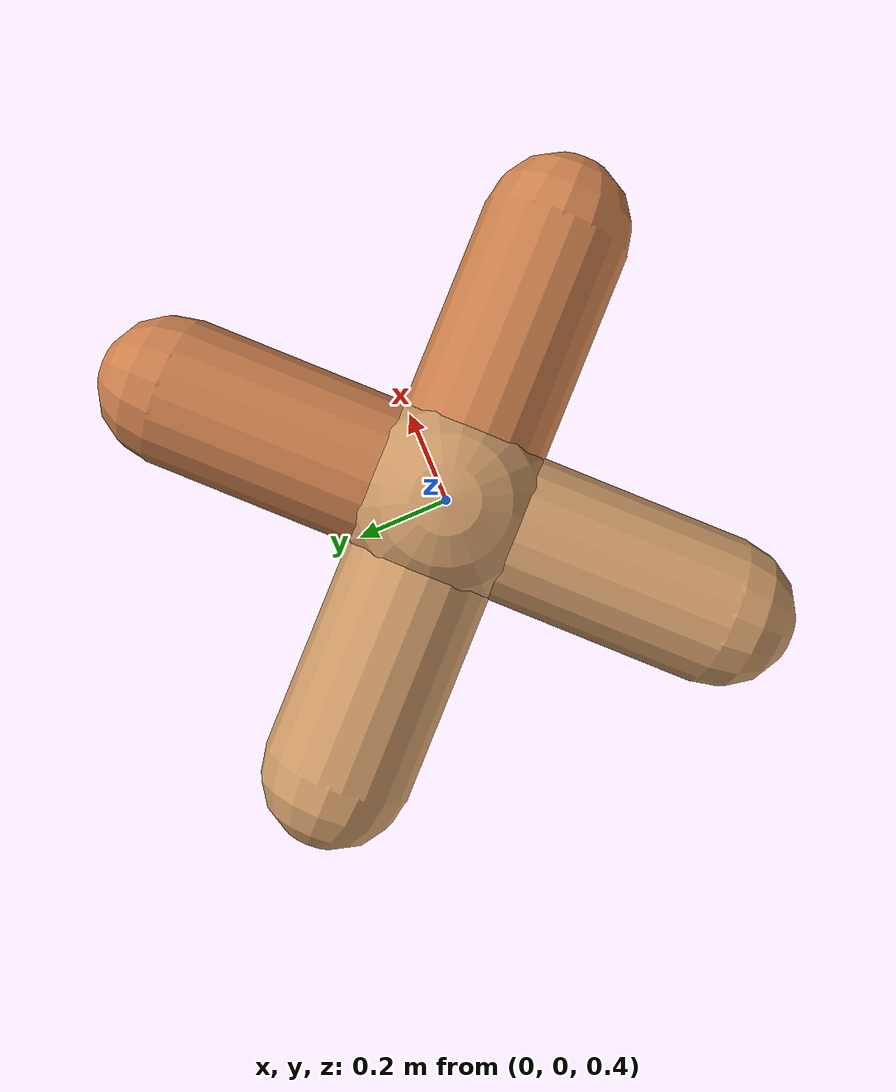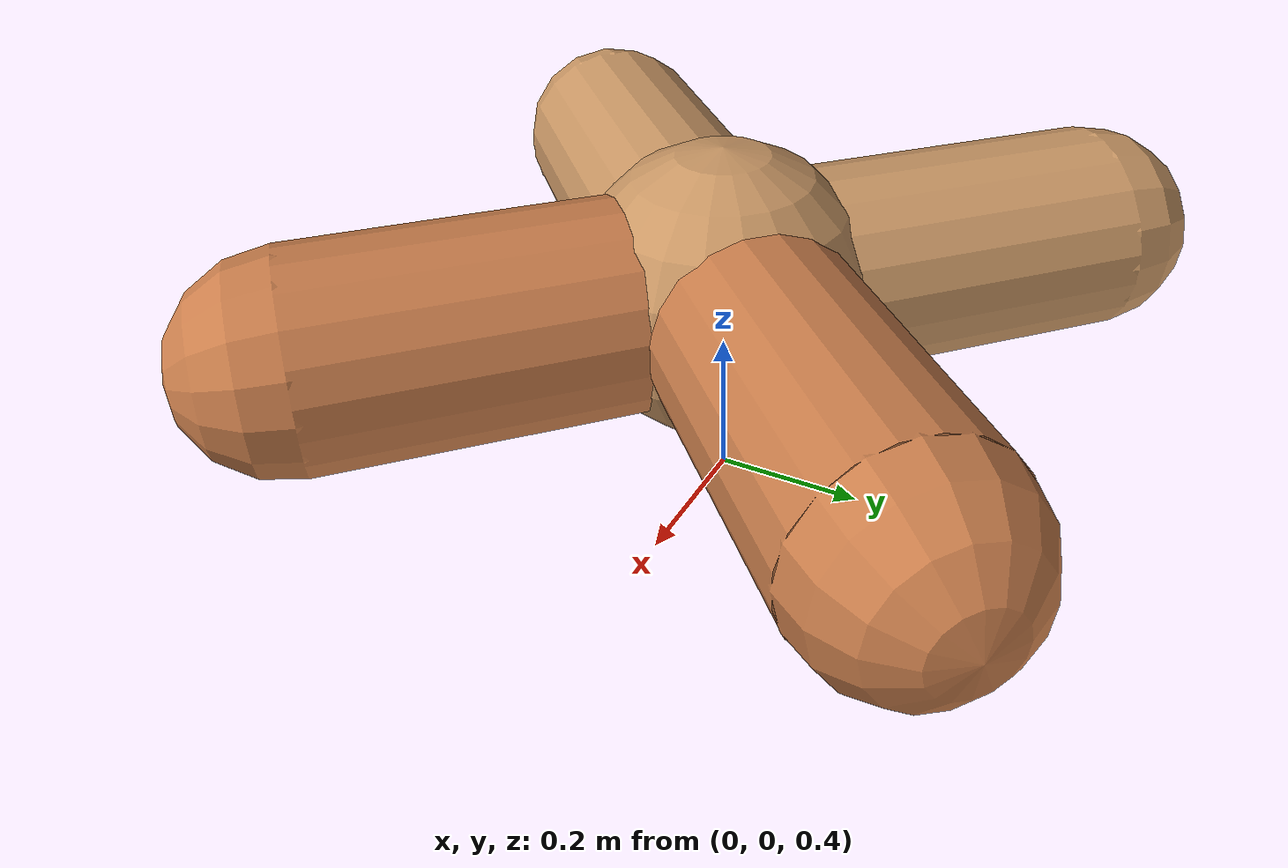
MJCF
<mujoco model="ant">
  <compiler angle="degree" coordinate="local" inertiafromgeom="true"/>
  <option integrator="RK4" timestep="0.01"/>
  <custom>
    <numeric data="0.0 0.0 0.55 1.0 0.0 0.0 0.0 0.0 1.0 0.0 -1.0 0.0 -1.0 0.0 1.0" name="init_qpos"/>
  </custom>
  <default>
    <joint armature="1" damping="1" limited="true"/>
    <geom conaffinity="0" condim="3" density="5.0" friction="1.5 0.1 0.1" margin="0.01" rgba="0.8 0.6 0.4 1"/>
  </default>
  <worldbody>
    <body name="torso" pos="0 0 0.6847706400064981">
      <geom name="torso_geom" pos="0 0 0" size="0.19788106876988892" type="sphere"/>
      <!--joint armature="0" damping="0" limited="false" margin="0.01" name="root" pos="0 0 0" type="free"/-->
      <body name="front_left_leg" pos="0 0 0">
        <geom fromto="0.0 0.0 0.0 0.015693044984335158 0.015693044984335158 0.0" name="aux_1_geom" size="0.08" type="capsule" rgba=".8 .5 .3 1"/>
        <body name="aux_1" pos="0.015693044984335158 0.015693044984335158 0">
          <joint axis="0 0 1" name="hip_1" pos="0.0 0.0 0.0" range="-40 40" type="hinge"/>
          <geom fromto="0.0 0.0 0.0 0.015693044984335158 0.015693044984335158 0.0" name="left_leg_geom" size="0.032034418599205236" type="capsule" rgba=".8 .5 .3 1"/>
          <body pos="0.015693044984335158 0.015693044984335158 0" name="front_left_foot">
            <joint axis="-1 1 0" name="ankle_1" pos="0.0 0.0 0.0" range="30 100" type="hinge"/>
            <geom fromto="0.0 0.0 0.0 0.35220259959595135 0.35220259959595135 0.0" name="left_ankle_geom" size="0.14203582983435126" type="capsule" rgba=".8 .5 .3 1"/>
          </body>
        </body>
      </body>
      <body name="front_right_leg" pos="0 0 0">
        <geom fromto="0.0 0.0 0.0 -0.015693044984335158 0.015693044984335158 0.0" name="aux_2_geom" size="0.08" type="capsule"/>
        <body name="aux_2" pos="-0.015693044984335158 0.015693044984335158 0">
          <joint axis="0 0 1" name="hip_2" pos="0.0 0.0 0.0" range="-40 40" type="hinge"/>
          <geom fromto="0.0 0.0 0.0 -0.015693044984335158 0.015693044984335158 0.0" name="right_leg_geom" size="0.032034418599205236" type="capsule"/>
          <body pos="-0.015693044984335158 0.015693044984335158 0" name="front_right_foot">
            <joint axis="1 1 0" name="ankle_2" pos="0.0 0.0 0.0" range="-100 -30" type="hinge"/>
            <geom fromto="0.0 0.0 0.0 -0.35220259959595135 0.35220259959595135 0.0" name="right_ankle_geom" size="0.14203582983435126" type="capsule"/>
          </body>
        </body>
      </body>
      <body name="left_back_leg" pos="0 0 0">
        <geom fromto="0.0 0.0 0.0 -0.015693044984335158 -0.015693044984335158 0.0" name="aux_3_geom" size="0.08" type="capsule"/>
        <body name="aux_3" pos="-0.015693044984335158 -0.015693044984335158 0">
          <joint axis="0 0 1" name="hip_3" pos="0.0 0.0 0.0" range="-40 40" type="hinge"/>
          <geom fromto="0.0 0.0 0.0 -0.015693044984335158 -0.015693044984335158 0.0" name="back_leg_geom" size="0.032034418599205236" type="capsule"/>
          <body pos="-0.015693044984335158 -0.015693044984335158 0" name="left_back_foot">
            <joint axis="-1 1 0" name="ankle_3" pos="0.0 0.0 0.0" range="-100 -30" type="hinge"/>
            <geom fromto="0.0 0.0 0.0 -0.35220259959595135 -0.35220259959595135 0.0" name="third_ankle_geom" size="0.14203582983435126" type="capsule"/>
          </body>
        </body>
      </body>
      <body name="right_back_leg" pos="0 0 0">
        <geom fromto="0.0 0.0 0.0 0.015693044984335158 -0.015693044984335158 0.0" name="aux_4_geom" size="0.08" type="capsule" rgba=".8 .5 .3 1"/>
        <body name="aux_4" pos="0.015693044984335158 -0.015693044984335158 0">
          <joint axis="0 0 1" name="hip_4" pos="0.0 0.0 0.0" range="-40 40" type="hinge"/>
          <geom fromto="0.0 0.0 0.0 0.015693044984335158 -0.015693044984335158 0.0" name="rightback_leg_geom" size="0.032034418599205236" type="capsule" rgba=".8 .5 .3 1"/>
          <body pos="0.015693044984335158 -0.015693044984335158 0" name="right_back_foot">
            <joint axis="1 1 0" name="ankle_4" pos="0.0 0.0 0.0" range="30 100" type="hinge"/>
            <geom fromto="0.0 0.0 0.0 0.35220259959595135 -0.35220259959595135 0.0" name="fourth_ankle_geom" size="0.14203582983435126" type="capsule" rgba=".8 .5 .3 1"/>
          </body>
        </body>
      </body>
    </body>
  </worldbody>
  <actuator>
    <motor ctrllimited="true" ctrlrange="-1.0 1.0" joint="hip_4" gear="150"/>
    <motor ctrllimited="true" ctrlrange="-1.0 1.0" joint="ankle_4" gear="150"/>
    <motor ctrllimited="true" ctrlrange="-1.0 1.0" joint="hip_1" gear="150"/>
    <motor ctrllimited="true" ctrlrange="-1.0 1.0" joint="ankle_1" gear="150"/>
    <motor ctrllimited="true" ctrlrange="-1.0 1.0" joint="hip_2" gear="150"/>
    <motor ctrllimited="true" ctrlrange="-1.0 1.0" joint="ankle_2" gear="150"/>
    <motor ctrllimited="true" ctrlrange="-1.0 1.0" joint="hip_3" gear="150"/>
    <motor ctrllimited="true" ctrlrange="-1.0 1.0" joint="ankle_3" gear="150"/>
  </actuator>
</mujoco>
